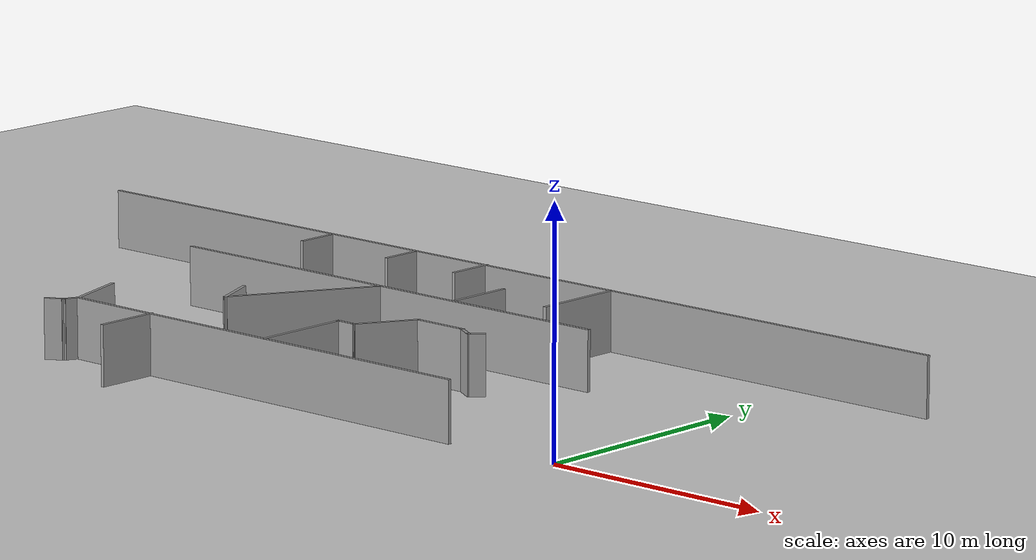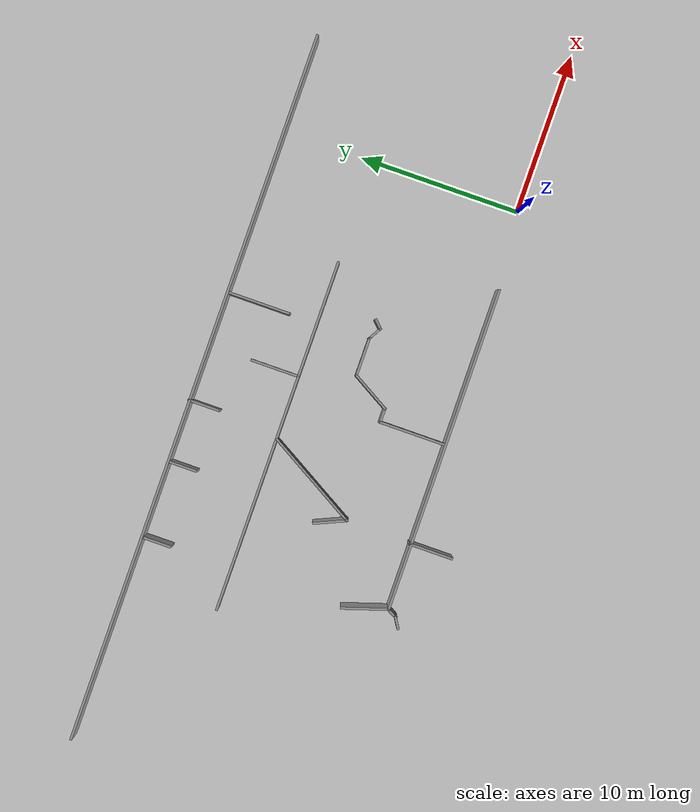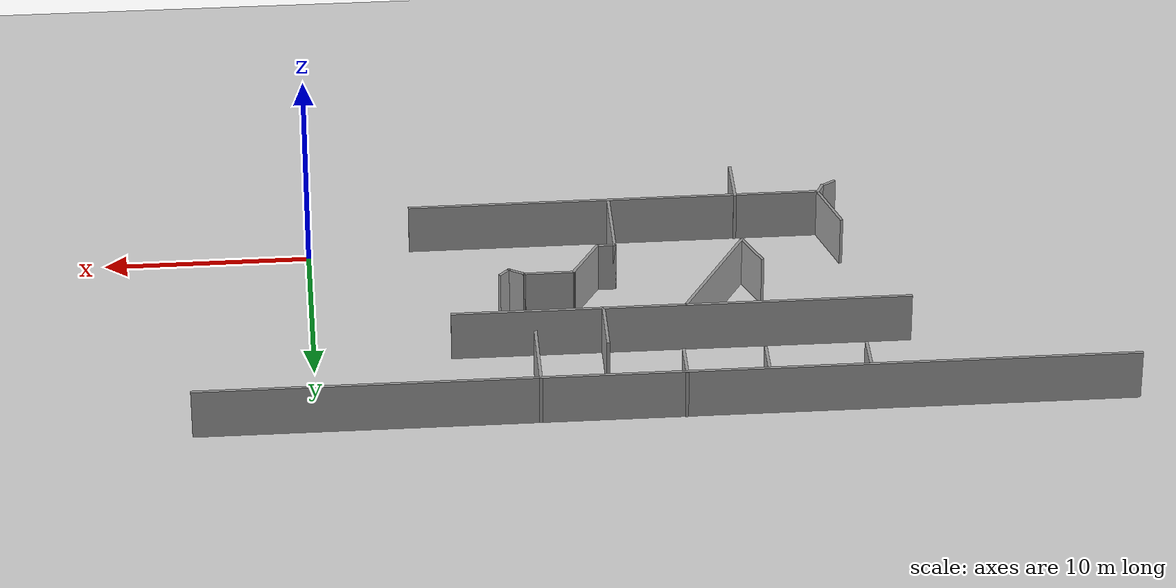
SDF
<sdf version="1.7">
 <world name="default">
  <model name="ground_plane">
   <static>1</static>
   <link name="link">
    <collision name="collision">
     <geometry><plane><normal>0 0 1</normal><size>100 100</size></plane></geometry>
     <surface>
      <contact><collide_bitmask>65535</collide_bitmask></contact>
      <friction><ode><mu>100</mu><mu2>50</mu2></ode></friction>
     </surface>
    </collision>
    <visual name="visual">
     <cast_shadows>0</cast_shadows>
     <geometry><plane><normal>0 0 1</normal><size>100 100</size></plane></geometry>
     <material>
      <script><uri>file://media/materials/scripts/gazebo.material</uri><name>Gazebo/Grey</name></script>
     </material>
    </visual>
   </link>
  </model>
  <model name="museum">
   <link name="Wall_0">
    <pose>1.36174 -6.35995 0 0 -0 0.00322</pose>
    <visual name="Wall_0_Visual">
     <pose>0 0 1.25 0 -0 0</pose>
     <geometry><box><size>20.2416 0.15 2.5</size></box></geometry>
     <material>
      <script><uri>file://media/materials/scripts/gazebo.material</uri><name>Gazebo/Grey</name></script>
      <ambient>1 1 1 1</ambient>
      <shader type="pixel"/>
     </material>
     <meta><layer>0</layer></meta>
    </visual>
    <collision name="Wall_0_Collision">
     <pose>0 0 1.25 0 -0 0</pose>
     <geometry><box><size>20.2416 0.15 2.5</size></box></geometry>
     <surface>
      <friction>
       <ode><mu>1</mu><mu2>1</mu2><fdir1>0 0 0</fdir1><slip1>0</slip1><slip2>0</slip2></ode>
       <torsional>
        <coefficient>1</coefficient>
        <patch_radius>0</patch_radius>
        <surface_radius>0</surface_radius>
        <use_patch_radius>1</use_patch_radius>
        <ode><slip>0</slip></ode>
       </torsional>
      </friction>
      <bounce><restitution_coefficient>0</restitution_coefficient><threshold>1e+06</threshold></bounce>
      <contact>
       <collide_without_contact>0</collide_without_contact>
       <collide_without_contact_bitmask>1</collide_without_contact_bitmask>
       <collide_bitmask>1</collide_bitmask>
       <ode>
        <soft_cfm>0</soft_cfm>
        <soft_erp>0.2</soft_erp>
        <kp>1e+13</kp>
        <kd>1</kd>
        <max_vel>0.01</max_vel>
        <min_depth>0</min_depth>
       </ode>
       <bullet>
        <split_impulse>1</split_impulse>
        <split_impulse_penetration_threshold>-0.01</split_impulse_penetration_threshold>
        <soft_cfm>0</soft_cfm>
        <soft_erp>0.2</soft_erp>
        <kp>1e+13</kp>
        <kd>1</kd>
       </bullet>
      </contact>
     </surface>
    </collision>
   </link>
   <link name="Wall_10">
    <pose>4.99403 0.023754 0 0 -0 0</pose>
    <visual name="Wall_10_Visual">
     <pose>0 0 1.25 0 -0 0</pose>
     <geometry><box><size>2.5 0.15 2.5</size></box></geometry>
     <material>
      <script><uri>file://media/materials/scripts/gazebo.material</uri><name>Gazebo/Grey</name></script>
      <ambient>1 1 1 1</ambient>
      <shader type="pixel"/>
     </material>
     <meta><layer>0</layer></meta>
    </visual>
    <collision name="Wall_10_Collision">
     <pose>0 0 1.25 0 -0 0</pose>
     <geometry><box><size>2.5 0.15 2.5</size></box></geometry>
     <surface>
      <friction>
       <ode><mu>1</mu><mu2>1</mu2><fdir1>0 0 0</fdir1><slip1>0</slip1><slip2>0</slip2></ode>
       <torsional>
        <coefficient>1</coefficient>
        <patch_radius>0</patch_radius>
        <surface_radius>0</surface_radius>
        <use_patch_radius>1</use_patch_radius>
        <ode><slip>0</slip></ode>
       </torsional>
      </friction>
      <bounce><restitution_coefficient>0</restitution_coefficient><threshold>1e+06</threshold></bounce>
      <contact>
       <collide_without_contact>0</collide_without_contact>
       <collide_without_contact_bitmask>1</collide_without_contact_bitmask>
       <collide_bitmask>1</collide_bitmask>
       <ode>
        <soft_cfm>0</soft_cfm>
        <soft_erp>0.2</soft_erp>
        <kp>1e+13</kp>
        <kd>1</kd>
        <max_vel>0.01</max_vel>
        <min_depth>0</min_depth>
       </ode>
       <bullet>
        <split_impulse>1</split_impulse>
        <split_impulse_penetration_threshold>-0.01</split_impulse_penetration_threshold>
        <soft_cfm>0</soft_cfm>
        <soft_erp>0.2</soft_erp>
        <kp>1e+13</kp>
        <kd>1</kd>
       </bullet>
      </contact>
     </surface>
    </collision>
   </link>
   <link name="Wall_11">
    <pose>6.53709 -0.188746 0 0 0 -0.523599</pose>
    <visual name="Wall_11_Visual">
     <pose>0 0 1.25 0 -0 0</pose>
     <geometry><box><size>1 0.15 2.5</size></box></geometry>
     <material>
      <script><uri>file://media/materials/scripts/gazebo.material</uri><name>Gazebo/Grey</name></script>
      <ambient>1 1 1 1</ambient>
      <shader type="pixel"/>
     </material>
     <meta><layer>0</layer></meta>
    </visual>
    <collision name="Wall_11_Collision">
     <pose>0 0 1.25 0 -0 0</pose>
     <geometry><box><size>1 0.15 2.5</size></box></geometry>
     <surface>
      <friction>
       <ode><mu>1</mu><mu2>1</mu2><fdir1>0 0 0</fdir1><slip1>0</slip1><slip2>0</slip2></ode>
       <torsional>
        <coefficient>1</coefficient>
        <patch_radius>0</patch_radius>
        <surface_radius>0</surface_radius>
        <use_patch_radius>1</use_patch_radius>
        <ode><slip>0</slip></ode>
       </torsional>
      </friction>
      <bounce><restitution_coefficient>0</restitution_coefficient><threshold>1e+06</threshold></bounce>
      <contact>
       <collide_without_contact>0</collide_without_contact>
       <collide_without_contact_bitmask>1</collide_without_contact_bitmask>
       <collide_bitmask>1</collide_bitmask>
       <ode>
        <soft_cfm>0</soft_cfm>
        <soft_erp>0.2</soft_erp>
        <kp>1e+13</kp>
        <kd>1</kd>
        <max_vel>0.01</max_vel>
        <min_depth>0</min_depth>
       </ode>
       <bullet>
        <split_impulse>1</split_impulse>
        <split_impulse_penetration_threshold>-0.01</split_impulse_penetration_threshold>
        <soft_cfm>0</soft_cfm>
        <soft_erp>0.2</soft_erp>
        <kp>1e+13</kp>
        <kd>1</kd>
       </bullet>
      </contact>
     </surface>
    </collision>
   </link>
   <link name="Wall_12">
    <pose>7.11728 -0.189114 0 0 -0 0.785398</pose>
    <visual name="Wall_12_Visual">
     <pose>0 0 1.25 0 -0 0</pose>
     <geometry><box><size>0.75 0.15 2.5</size></box></geometry>
     <material>
      <script><uri>file://media/materials/scripts/gazebo.material</uri><name>Gazebo/Grey</name></script>
      <ambient>1 1 1 1</ambient>
      <shader type="pixel"/>
     </material>
     <meta><layer>0</layer></meta>
    </visual>
    <collision name="Wall_12_Collision">
     <pose>0 0 1.25 0 -0 0</pose>
     <geometry><box><size>0.75 0.15 2.5</size></box></geometry>
     <surface>
      <friction>
       <ode><mu>1</mu><mu2>1</mu2><fdir1>0 0 0</fdir1><slip1>0</slip1><slip2>0</slip2></ode>
       <torsional>
        <coefficient>1</coefficient>
        <patch_radius>0</patch_radius>
        <surface_radius>0</surface_radius>
        <use_patch_radius>1</use_patch_radius>
        <ode><slip>0</slip></ode>
       </torsional>
      </friction>
      <bounce><restitution_coefficient>0</restitution_coefficient><threshold>1e+06</threshold></bounce>
      <contact>
       <collide_without_contact>0</collide_without_contact>
       <collide_without_contact_bitmask>1</collide_without_contact_bitmask>
       <collide_bitmask>1</collide_bitmask>
       <ode>
        <soft_cfm>0</soft_cfm>
        <soft_erp>0.2</soft_erp>
        <kp>1e+13</kp>
        <kd>1</kd>
        <max_vel>0.01</max_vel>
        <min_depth>0</min_depth>
       </ode>
       <bullet>
        <split_impulse>1</split_impulse>
        <split_impulse_penetration_threshold>-0.01</split_impulse_penetration_threshold>
        <soft_cfm>0</soft_cfm>
        <soft_erp>0.2</soft_erp>
        <kp>1e+13</kp>
        <kd>1</kd>
       </bullet>
      </contact>
     </surface>
    </collision>
   </link>
   <link name="Wall_30">
    <pose>-0.035673 8.91342 0 0 -0 0.000389</pose>
    <visual name="Wall_30_Visual">
     <pose>0 0 1.25 0 -0 0</pose>
     <geometry><box><size>44.4628 0.15 2.5</size></box></geometry>
     <material>
      <script><uri>file://media/materials/scripts/gazebo.material</uri><name>Gazebo/Grey</name></script>
      <ambient>1 1 1 1</ambient>
      <shader type="pixel"/>
     </material>
     <meta><layer>0</layer></meta>
    </visual>
    <collision name="Wall_30_Collision">
     <pose>0 0 1.25 0 -0 0</pose>
     <geometry><box><size>44.4628 0.15 2.5</size></box></geometry>
     <surface>
      <friction>
       <ode><mu>1</mu><mu2>1</mu2><fdir1>0 0 0</fdir1><slip1>0</slip1><slip2>0</slip2></ode>
       <torsional>
        <coefficient>1</coefficient>
        <patch_radius>0</patch_radius>
        <surface_radius>0</surface_radius>
        <use_patch_radius>1</use_patch_radius>
        <ode><slip>0</slip></ode>
       </torsional>
      </friction>
      <bounce><restitution_coefficient>0</restitution_coefficient><threshold>1e+06</threshold></bounce>
      <contact>
       <collide_without_contact>0</collide_without_contact>
       <collide_without_contact_bitmask>1</collide_without_contact_bitmask>
       <collide_bitmask>1</collide_bitmask>
       <ode>
        <soft_cfm>0</soft_cfm>
        <soft_erp>0.2</soft_erp>
        <kp>1e+13</kp>
        <kd>1</kd>
        <max_vel>0.01</max_vel>
        <min_depth>0</min_depth>
       </ode>
       <bullet>
        <split_impulse>1</split_impulse>
        <split_impulse_penetration_threshold>-0.01</split_impulse_penetration_threshold>
        <soft_cfm>0</soft_cfm>
        <soft_erp>0.2</soft_erp>
        <kp>1e+13</kp>
        <kd>1</kd>
       </bullet>
      </contact>
     </surface>
    </collision>
   </link>
   <link name="Wall_33">
    <pose>-4.58629 -7.629 0 0 0 -1.5708</pose>
    <visual name="Wall_33_Visual">
     <pose>0 0 1.25 0 -0 0</pose>
     <geometry><box><size>2.75 0.15 2.5</size></box></geometry>
     <material>
      <script><uri>file://media/materials/scripts/gazebo.material</uri><name>Gazebo/Grey</name></script>
      <ambient>1 1 1 1</ambient>
      <shader type="pixel"/>
     </material>
     <meta><layer>0</layer></meta>
    </visual>
    <collision name="Wall_33_Collision">
     <pose>0 0 1.25 0 -0 0</pose>
     <geometry><box><size>2.75 0.15 2.5</size></box></geometry>
     <surface>
      <friction>
       <ode><mu>1</mu><mu2>1</mu2><fdir1>0 0 0</fdir1><slip1>0</slip1><slip2>0</slip2></ode>
       <torsional>
        <coefficient>1</coefficient>
        <patch_radius>0</patch_radius>
        <surface_radius>0</surface_radius>
        <use_patch_radius>1</use_patch_radius>
        <ode><slip>0</slip></ode>
       </torsional>
      </friction>
      <bounce><restitution_coefficient>0</restitution_coefficient><threshold>1e+06</threshold></bounce>
      <contact>
       <collide_without_contact>0</collide_without_contact>
       <collide_without_contact_bitmask>1</collide_without_contact_bitmask>
       <collide_bitmask>1</collide_bitmask>
       <ode>
        <soft_cfm>0</soft_cfm>
        <soft_erp>0.2</soft_erp>
        <kp>1e+13</kp>
        <kd>1</kd>
        <max_vel>0.01</max_vel>
        <min_depth>0</min_depth>
       </ode>
       <bullet>
        <split_impulse>1</split_impulse>
        <split_impulse_penetration_threshold>-0.01</split_impulse_penetration_threshold>
        <soft_cfm>0</soft_cfm>
        <soft_erp>0.2</soft_erp>
        <kp>1e+13</kp>
        <kd>1</kd>
       </bullet>
      </contact>
     </surface>
    </collision>
   </link>
   <link name="Wall_45">
    <pose>-4.9172 -1.38036 0 0 0 -1.15545</pose>
    <visual name="Wall_45_Visual">
     <pose>0 0 1.25 0 -0 0</pose>
     <geometry><box><size>2.13807 0.15 2.5</size></box></geometry>
     <material>
      <script><uri>file://media/materials/scripts/gazebo.material</uri><name>Gazebo/Grey</name></script>
      <ambient>1 1 1 1</ambient>
      <shader type="pixel"/>
     </material>
     <meta><layer>0</layer></meta>
    </visual>
    <collision name="Wall_45_Collision">
     <pose>0 0 1.25 0 -0 0</pose>
     <geometry><box><size>2.13807 0.15 2.5</size></box></geometry>
     <surface>
      <friction>
       <ode><mu>1</mu><mu2>1</mu2><fdir1>0 0 0</fdir1><slip1>0</slip1><slip2>0</slip2></ode>
       <torsional>
        <coefficient>1</coefficient>
        <patch_radius>0</patch_radius>
        <surface_radius>0</surface_radius>
        <use_patch_radius>1</use_patch_radius>
        <ode><slip>0</slip></ode>
       </torsional>
      </friction>
      <bounce><restitution_coefficient>0</restitution_coefficient><threshold>1e+06</threshold></bounce>
      <contact>
       <collide_without_contact>0</collide_without_contact>
       <collide_without_contact_bitmask>1</collide_without_contact_bitmask>
       <collide_bitmask>1</collide_bitmask>
       <ode>
        <soft_cfm>0</soft_cfm>
        <soft_erp>0.2</soft_erp>
        <kp>1e+13</kp>
        <kd>1</kd>
        <max_vel>0.01</max_vel>
        <min_depth>0</min_depth>
       </ode>
       <bullet>
        <split_impulse>1</split_impulse>
        <split_impulse_penetration_threshold>-0.01</split_impulse_penetration_threshold>
        <soft_cfm>0</soft_cfm>
        <soft_erp>0.2</soft_erp>
        <kp>1e+13</kp>
        <kd>1</kd>
       </bullet>
      </contact>
     </surface>
    </collision>
   </link>
   <link name="Wall_46">
    <pose>-2.9286 0.459745 0 0 -0 1.0472</pose>
    <visual name="Wall_46_Visual">
     <pose>0 0 1.25 0 -0 0</pose>
     <geometry><box><size>6.5 0.15 2.5</size></box></geometry>
     <material>
      <script><uri>file://media/materials/scripts/gazebo.material</uri><name>Gazebo/Grey</name></script>
      <ambient>1 1 1 1</ambient>
      <shader type="pixel"/>
     </material>
     <meta><layer>0</layer></meta>
    </visual>
    <collision name="Wall_46_Collision">
     <pose>0 0 1.25 0 -0 0</pose>
     <geometry><box><size>6.5 0.15 2.5</size></box></geometry>
     <surface>
      <friction>
       <ode><mu>1</mu><mu2>1</mu2><fdir1>0 0 0</fdir1><slip1>0</slip1><slip2>0</slip2></ode>
       <torsional>
        <coefficient>1</coefficient>
        <patch_radius>0</patch_radius>
        <surface_radius>0</surface_radius>
        <use_patch_radius>1</use_patch_radius>
        <ode><slip>0</slip></ode>
       </torsional>
      </friction>
      <bounce><restitution_coefficient>0</restitution_coefficient><threshold>1e+06</threshold></bounce>
      <contact>
       <collide_without_contact>0</collide_without_contact>
       <collide_without_contact_bitmask>1</collide_without_contact_bitmask>
       <collide_bitmask>1</collide_bitmask>
       <ode>
        <soft_cfm>0</soft_cfm>
        <soft_erp>0.2</soft_erp>
        <kp>1e+13</kp>
        <kd>1</kd>
        <max_vel>0.01</max_vel>
        <min_depth>0</min_depth>
       </ode>
       <bullet>
        <split_impulse>1</split_impulse>
        <split_impulse_penetration_threshold>-0.01</split_impulse_penetration_threshold>
        <soft_cfm>0</soft_cfm>
        <soft_erp>0.2</soft_erp>
        <kp>1e+13</kp>
        <kd>1</kd>
       </bullet>
      </contact>
     </surface>
    </collision>
   </link>
   <link name="Wall_48">
    <pose>-1.12537 3.27433 0 0 -0 0</pose>
    <visual name="Wall_48_Visual">
     <pose>0 0 1.25 0 -0 0</pose>
     <geometry><box><size>22 0.15 2.5</size></box></geometry>
     <material>
      <script><uri>file://media/materials/scripts/gazebo.material</uri><name>Gazebo/Grey</name></script>
      <ambient>1 1 1 1</ambient>
      <shader type="pixel"/>
     </material>
     <meta><layer>0</layer></meta>
    </visual>
    <collision name="Wall_48_Collision">
     <pose>0 0 1.25 0 -0 0</pose>
     <geometry><box><size>22 0.15 2.5</size></box></geometry>
     <surface>
      <friction>
       <ode><mu>1</mu><mu2>1</mu2><fdir1>0 0 0</fdir1><slip1>0</slip1><slip2>0</slip2></ode>
       <torsional>
        <coefficient>1</coefficient>
        <patch_radius>0</patch_radius>
        <surface_radius>0</surface_radius>
        <use_patch_radius>1</use_patch_radius>
        <ode><slip>0</slip></ode>
       </torsional>
      </friction>
      <bounce><restitution_coefficient>0</restitution_coefficient><threshold>1e+06</threshold></bounce>
      <contact>
       <collide_without_contact>0</collide_without_contact>
       <collide_without_contact_bitmask>1</collide_without_contact_bitmask>
       <collide_bitmask>1</collide_bitmask>
       <ode>
        <soft_cfm>0</soft_cfm>
        <soft_erp>0.2</soft_erp>
        <kp>1e+13</kp>
        <kd>1</kd>
        <max_vel>0.01</max_vel>
        <min_depth>0</min_depth>
       </ode>
       <bullet>
        <split_impulse>1</split_impulse>
        <split_impulse_penetration_threshold>-0.01</split_impulse_penetration_threshold>
        <soft_cfm>0</soft_cfm>
        <soft_erp>0.2</soft_erp>
        <kp>1e+13</kp>
        <kd>1</kd>
       </bullet>
      </contact>
     </surface>
    </collision>
   </link>
   <link name="Wall_52">
    <pose>-9.46474 7.92651 0 0 -0 1.5708</pose>
    <visual name="Wall_52_Visual">
     <pose>0 0 1.25 0 -0 0</pose>
     <geometry><box><size>1.75 0.15 2.5</size></box></geometry>
     <material>
      <script><uri>file://media/materials/scripts/gazebo.material</uri><name>Gazebo/Grey</name></script>
      <ambient>1 1 1 1</ambient>
      <shader type="pixel"/>
     </material>
     <meta><layer>0</layer></meta>
    </visual>
    <collision name="Wall_52_Collision">
     <pose>0 0 1.25 0 -0 0</pose>
     <geometry><box><size>1.75 0.15 2.5</size></box></geometry>
     <surface>
      <friction>
       <ode><mu>1</mu><mu2>1</mu2><fdir1>0 0 0</fdir1><slip1>0</slip1><slip2>0</slip2></ode>
       <torsional>
        <coefficient>1</coefficient>
        <patch_radius>0</patch_radius>
        <surface_radius>0</surface_radius>
        <use_patch_radius>1</use_patch_radius>
        <ode><slip>0</slip></ode>
       </torsional>
      </friction>
      <bounce><restitution_coefficient>0</restitution_coefficient><threshold>1e+06</threshold></bounce>
      <contact>
       <collide_without_contact>0</collide_without_contact>
       <collide_without_contact_bitmask>1</collide_without_contact_bitmask>
       <collide_bitmask>1</collide_bitmask>
       <ode>
        <soft_cfm>0</soft_cfm>
        <soft_erp>0.2</soft_erp>
        <kp>1e+13</kp>
        <kd>1</kd>
        <max_vel>0.01</max_vel>
        <min_depth>0</min_depth>
       </ode>
       <bullet>
        <split_impulse>1</split_impulse>
        <split_impulse_penetration_threshold>-0.01</split_impulse_penetration_threshold>
        <soft_cfm>0</soft_cfm>
        <soft_erp>0.2</soft_erp>
        <kp>1e+13</kp>
        <kd>1</kd>
       </bullet>
      </contact>
     </surface>
    </collision>
   </link>
   <link name="Wall_54">
    <pose>-4.70302 7.98002 0 0 -0 1.5708</pose>
    <visual name="Wall_54_Visual">
     <pose>0 0 1.25 0 -0 0</pose>
     <geometry><box><size>1.75 0.15 2.5</size></box></geometry>
     <material>
      <script><uri>file://media/materials/scripts/gazebo.material</uri><name>Gazebo/Grey</name></script>
      <ambient>1 1 1 1</ambient>
      <shader type="pixel"/>
     </material>
     <meta><layer>0</layer></meta>
    </visual>
    <collision name="Wall_54_Collision">
     <pose>0 0 1.25 0 -0 0</pose>
     <geometry><box><size>1.75 0.15 2.5</size></box></geometry>
     <surface>
      <friction>
       <ode><mu>1</mu><mu2>1</mu2><fdir1>0 0 0</fdir1><slip1>0</slip1><slip2>0</slip2></ode>
       <torsional>
        <coefficient>1</coefficient>
        <patch_radius>0</patch_radius>
        <surface_radius>0</surface_radius>
        <use_patch_radius>1</use_patch_radius>
        <ode><slip>0</slip></ode>
       </torsional>
      </friction>
      <bounce><restitution_coefficient>0</restitution_coefficient><threshold>1e+06</threshold></bounce>
      <contact>
       <collide_without_contact>0</collide_without_contact>
       <collide_without_contact_bitmask>1</collide_without_contact_bitmask>
       <collide_bitmask>1</collide_bitmask>
       <ode>
        <soft_cfm>0</soft_cfm>
        <soft_erp>0.2</soft_erp>
        <kp>1e+13</kp>
        <kd>1</kd>
        <max_vel>0.01</max_vel>
        <min_depth>0</min_depth>
       </ode>
       <bullet>
        <split_impulse>1</split_impulse>
        <split_impulse_penetration_threshold>-0.01</split_impulse_penetration_threshold>
        <soft_cfm>0</soft_cfm>
        <soft_erp>0.2</soft_erp>
        <kp>1e+13</kp>
        <kd>1</kd>
       </bullet>
      </contact>
     </surface>
    </collision>
   </link>
   <link name="Wall_56">
    <pose>-0.850838 8.02476 0 0 -0 1.5708</pose>
    <visual name="Wall_56_Visual">
     <pose>0 0 1.25 0 -0 0</pose>
     <geometry><box><size>2 0.15 2.5</size></box></geometry>
     <material>
      <script><uri>file://media/materials/scripts/gazebo.material</uri><name>Gazebo/Grey</name></script>
      <ambient>1 1 1 1</ambient>
      <shader type="pixel"/>
     </material>
     <meta><layer>0</layer></meta>
    </visual>
    <collision name="Wall_56_Collision">
     <pose>0 0 1.25 0 -0 0</pose>
     <geometry><box><size>2 0.15 2.5</size></box></geometry>
     <surface>
      <friction>
       <ode><mu>1</mu><mu2>1</mu2><fdir1>0 0 0</fdir1><slip1>0</slip1><slip2>0</slip2></ode>
       <torsional>
        <coefficient>1</coefficient>
        <patch_radius>0</patch_radius>
        <surface_radius>0</surface_radius>
        <use_patch_radius>1</use_patch_radius>
        <ode><slip>0</slip></ode>
       </torsional>
      </friction>
      <bounce><restitution_coefficient>0</restitution_coefficient><threshold>1e+06</threshold></bounce>
      <contact>
       <collide_without_contact>0</collide_without_contact>
       <collide_without_contact_bitmask>1</collide_without_contact_bitmask>
       <collide_bitmask>1</collide_bitmask>
       <ode>
        <soft_cfm>0</soft_cfm>
        <soft_erp>0.2</soft_erp>
        <kp>1e+13</kp>
        <kd>1</kd>
        <max_vel>0.01</max_vel>
        <min_depth>0</min_depth>
       </ode>
       <bullet>
        <split_impulse>1</split_impulse>
        <split_impulse_penetration_threshold>-0.01</split_impulse_penetration_threshold>
        <soft_cfm>0</soft_cfm>
        <soft_erp>0.2</soft_erp>
        <kp>1e+13</kp>
        <kd>1</kd>
       </bullet>
      </contact>
     </surface>
    </collision>
   </link>
   <link name="Wall_58">
    <pose>2.62683 4.76522 0 0 0 -1.5708</pose>
    <visual name="Wall_58_Visual">
     <pose>0 0 1.25 0 -0 0</pose>
     <geometry><box><size>3 0.15 2.5</size></box></geometry>
     <material>
      <script><uri>file://media/materials/scripts/gazebo.material</uri><name>Gazebo/Grey</name></script>
      <ambient>1 1 1 1</ambient>
      <shader type="pixel"/>
     </material>
     <meta><layer>0</layer></meta>
    </visual>
    <collision name="Wall_58_Collision">
     <pose>0 0 1.25 0 -0 0</pose>
     <geometry><box><size>3 0.15 2.5</size></box></geometry>
     <surface>
      <friction>
       <ode><mu>1</mu><mu2>1</mu2><fdir1>0 0 0</fdir1><slip1>0</slip1><slip2>0</slip2></ode>
       <torsional>
        <coefficient>1</coefficient>
        <patch_radius>0</patch_radius>
        <surface_radius>0</surface_radius>
        <use_patch_radius>1</use_patch_radius>
        <ode><slip>0</slip></ode>
       </torsional>
      </friction>
      <bounce><restitution_coefficient>0</restitution_coefficient><threshold>1e+06</threshold></bounce>
      <contact>
       <collide_without_contact>0</collide_without_contact>
       <collide_without_contact_bitmask>1</collide_without_contact_bitmask>
       <collide_bitmask>1</collide_bitmask>
       <ode>
        <soft_cfm>0</soft_cfm>
        <soft_erp>0.2</soft_erp>
        <kp>1e+13</kp>
        <kd>1</kd>
        <max_vel>0.01</max_vel>
        <min_depth>0</min_depth>
       </ode>
       <bullet>
        <split_impulse>1</split_impulse>
        <split_impulse_penetration_threshold>-0.01</split_impulse_penetration_threshold>
        <soft_cfm>0</soft_cfm>
        <soft_erp>0.2</soft_erp>
        <kp>1e+13</kp>
        <kd>1</kd>
       </bullet>
      </contact>
     </surface>
    </collision>
   </link>
   <link name="Wall_60">
    <pose>5.97073 6.99167 0 0 -0 1.5708</pose>
    <visual name="Wall_60_Visual">
     <pose>0 0 1.25 0 -0 0</pose>
     <geometry><box><size>4 0.15 2.5</size></box></geometry>
     <material>
      <script><uri>file://media/materials/scripts/gazebo.material</uri><name>Gazebo/Grey</name></script>
      <ambient>1 1 1 1</ambient>
      <shader type="pixel"/>
     </material>
     <meta><layer>0</layer></meta>
    </visual>
    <collision name="Wall_60_Collision">
     <pose>0 0 1.25 0 -0 0</pose>
     <geometry><box><size>4 0.15 2.5</size></box></geometry>
     <surface>
      <friction>
       <ode><mu>1</mu><mu2>1</mu2><fdir1>0 0 0</fdir1><slip1>0</slip1><slip2>0</slip2></ode>
       <torsional>
        <coefficient>1</coefficient>
        <patch_radius>0</patch_radius>
        <surface_radius>0</surface_radius>
        <use_patch_radius>1</use_patch_radius>
        <ode><slip>0</slip></ode>
       </torsional>
      </friction>
      <bounce><restitution_coefficient>0</restitution_coefficient><threshold>1e+06</threshold></bounce>
      <contact>
       <collide_without_contact>0</collide_without_contact>
       <collide_without_contact_bitmask>1</collide_without_contact_bitmask>
       <collide_bitmask>1</collide_bitmask>
       <ode>
        <soft_cfm>0</soft_cfm>
        <soft_erp>0.2</soft_erp>
        <kp>1e+13</kp>
        <kd>1</kd>
        <max_vel>0.01</max_vel>
        <min_depth>0</min_depth>
       </ode>
       <bullet>
        <split_impulse>1</split_impulse>
        <split_impulse_penetration_threshold>-0.01</split_impulse_penetration_threshold>
        <soft_cfm>0</soft_cfm>
        <soft_erp>0.2</soft_erp>
        <kp>1e+13</kp>
        <kd>1</kd>
       </bullet>
      </contact>
     </surface>
    </collision>
   </link>
   <link name="Wall_7">
    <pose>1.66903 -4.27791 0 0 -0 1.5708</pose>
    <visual name="Wall_7_Visual">
     <pose>0 0 1.25 0 -0 0</pose>
     <geometry><box><size>4.25 0.15 2.5</size></box></geometry>
     <material>
      <script><uri>file://media/materials/scripts/gazebo.material</uri><name>Gazebo/Grey</name></script>
      <ambient>1 1 1 1</ambient>
      <shader type="pixel"/>
     </material>
     <meta><layer>0</layer></meta>
    </visual>
    <collision name="Wall_7_Collision">
     <pose>0 0 1.25 0 -0 0</pose>
     <geometry><box><size>4.25 0.15 2.5</size></box></geometry>
     <surface>
      <friction>
       <ode><mu>1</mu><mu2>1</mu2><fdir1>0 0 0</fdir1><slip1>0</slip1><slip2>0</slip2></ode>
       <torsional>
        <coefficient>1</coefficient>
        <patch_radius>0</patch_radius>
        <surface_radius>0</surface_radius>
        <use_patch_radius>1</use_patch_radius>
        <ode><slip>0</slip></ode>
       </torsional>
      </friction>
      <bounce><restitution_coefficient>0</restitution_coefficient><threshold>1e+06</threshold></bounce>
      <contact>
       <collide_without_contact>0</collide_without_contact>
       <collide_without_contact_bitmask>1</collide_without_contact_bitmask>
       <collide_bitmask>1</collide_bitmask>
       <ode>
        <soft_cfm>0</soft_cfm>
        <soft_erp>0.2</soft_erp>
        <kp>1e+13</kp>
        <kd>1</kd>
        <max_vel>0.01</max_vel>
        <min_depth>0</min_depth>
       </ode>
       <bullet>
        <split_impulse>1</split_impulse>
        <split_impulse_penetration_threshold>-0.01</split_impulse_penetration_threshold>
        <soft_cfm>0</soft_cfm>
        <soft_erp>0.2</soft_erp>
        <kp>1e+13</kp>
        <kd>1</kd>
       </bullet>
      </contact>
     </surface>
    </collision>
   </link>
   <link name="Wall_74">
    <pose>-9.263 -7.09783 0 0 -0 0.557557</pose>
    <visual name="Wall_74_Visual">
     <pose>0 0 1.25 0 -0 0</pose>
     <geometry><box><size>0.878533 0.15 2.5</size></box></geometry>
     <material>
      <script><uri>file://media/materials/scripts/gazebo.material</uri><name>Gazebo/Grey</name></script>
      <ambient>1 1 1 1</ambient>
      <shader type="pixel"/>
     </material>
     <meta><layer>0</layer></meta>
    </visual>
    <collision name="Wall_74_Collision">
     <pose>0 0 1.25 0 -0 0</pose>
     <geometry><box><size>0.878533 0.15 2.5</size></box></geometry>
     <surface>
      <friction>
       <ode><mu>1</mu><mu2>1</mu2><fdir1>0 0 0</fdir1><slip1>0</slip1><slip2>0</slip2></ode>
       <torsional>
        <coefficient>1</coefficient>
        <patch_radius>0</patch_radius>
        <surface_radius>0</surface_radius>
        <use_patch_radius>1</use_patch_radius>
        <ode><slip>0</slip></ode>
       </torsional>
      </friction>
      <bounce><restitution_coefficient>0</restitution_coefficient><threshold>1e+06</threshold></bounce>
      <contact>
       <collide_without_contact>0</collide_without_contact>
       <collide_without_contact_bitmask>1</collide_without_contact_bitmask>
       <collide_bitmask>1</collide_bitmask>
       <ode>
        <soft_cfm>0</soft_cfm>
        <soft_erp>0.2</soft_erp>
        <kp>1e+13</kp>
        <kd>1</kd>
        <max_vel>0.01</max_vel>
        <min_depth>0</min_depth>
       </ode>
       <bullet>
        <split_impulse>1</split_impulse>
        <split_impulse_penetration_threshold>-0.01</split_impulse_penetration_threshold>
        <soft_cfm>0</soft_cfm>
        <soft_erp>0.2</soft_erp>
        <kp>1e+13</kp>
        <kd>1</kd>
       </bullet>
      </contact>
     </surface>
    </collision>
   </link>
   <link name="Wall_75">
    <pose>-8.83299 -6.65175 0 0 -0 1.10514</pose>
    <visual name="Wall_75_Visual">
     <pose>0 0 1.25 0 -0 0</pose>
     <geometry><box><size>0.774942 0.15 2.5</size></box></geometry>
     <material>
      <script><uri>file://media/materials/scripts/gazebo.material</uri><name>Gazebo/Grey</name></script>
      <ambient>1 1 1 1</ambient>
      <shader type="pixel"/>
     </material>
     <meta><layer>0</layer></meta>
    </visual>
    <collision name="Wall_75_Collision">
     <pose>0 0 1.25 0 -0 0</pose>
     <geometry><box><size>0.774942 0.15 2.5</size></box></geometry>
     <surface>
      <friction>
       <ode><mu>1</mu><mu2>1</mu2><fdir1>0 0 0</fdir1><slip1>0</slip1><slip2>0</slip2></ode>
       <torsional>
        <coefficient>1</coefficient>
        <patch_radius>0</patch_radius>
        <surface_radius>0</surface_radius>
        <use_patch_radius>1</use_patch_radius>
        <ode><slip>0</slip></ode>
       </torsional>
      </friction>
      <bounce><restitution_coefficient>0</restitution_coefficient><threshold>1e+06</threshold></bounce>
      <contact>
       <collide_without_contact>0</collide_without_contact>
       <collide_without_contact_bitmask>1</collide_without_contact_bitmask>
       <collide_bitmask>1</collide_bitmask>
       <ode>
        <soft_cfm>0</soft_cfm>
        <soft_erp>0.2</soft_erp>
        <kp>1e+13</kp>
        <kd>1</kd>
        <max_vel>0.01</max_vel>
        <min_depth>0</min_depth>
       </ode>
       <bullet>
        <split_impulse>1</split_impulse>
        <split_impulse_penetration_threshold>-0.01</split_impulse_penetration_threshold>
        <soft_cfm>0</soft_cfm>
        <soft_erp>0.2</soft_erp>
        <kp>1e+13</kp>
        <kd>1</kd>
       </bullet>
      </contact>
     </surface>
    </collision>
   </link>
   <link name="Wall_76">
    <pose>-9.10023 -5.04365 0 0 -0 1.88165</pose>
    <visual name="Wall_76_Visual">
     <pose>0 0 1.25 0 -0 0</pose>
     <geometry><box><size>2.94158 0.15 2.5</size></box></geometry>
     <material>
      <script><uri>file://media/materials/scripts/gazebo.material</uri><name>Gazebo/Grey</name></script>
      <ambient>1 1 1 1</ambient>
      <shader type="pixel"/>
     </material>
     <meta><layer>0</layer></meta>
    </visual>
    <collision name="Wall_76_Collision">
     <pose>0 0 1.25 0 -0 0</pose>
     <geometry><box><size>2.94158 0.15 2.5</size></box></geometry>
     <surface>
      <friction>
       <ode><mu>1</mu><mu2>1</mu2><fdir1>0 0 0</fdir1><slip1>0</slip1><slip2>0</slip2></ode>
       <torsional>
        <coefficient>1</coefficient>
        <patch_radius>0</patch_radius>
        <surface_radius>0</surface_radius>
        <use_patch_radius>1</use_patch_radius>
        <ode><slip>0</slip></ode>
       </torsional>
      </friction>
      <bounce><restitution_coefficient>0</restitution_coefficient><threshold>1e+06</threshold></bounce>
      <contact>
       <collide_without_contact>0</collide_without_contact>
       <collide_without_contact_bitmask>1</collide_without_contact_bitmask>
       <collide_bitmask>1</collide_bitmask>
       <ode>
        <soft_cfm>0</soft_cfm>
        <soft_erp>0.2</soft_erp>
        <kp>1e+13</kp>
        <kd>1</kd>
        <max_vel>0.01</max_vel>
        <min_depth>0</min_depth>
       </ode>
       <bullet>
        <split_impulse>1</split_impulse>
        <split_impulse_penetration_threshold>-0.01</split_impulse_penetration_threshold>
        <soft_cfm>0</soft_cfm>
        <soft_erp>0.2</soft_erp>
        <kp>1e+13</kp>
        <kd>1</kd>
       </bullet>
      </contact>
     </surface>
    </collision>
   </link>
   <link name="Wall_8">
    <pose>2.09403 -2.22791 0 0 -0 0</pose>
    <visual name="Wall_8_Visual">
     <pose>0 0 1.25 0 -0 0</pose>
     <geometry><box><size>1 0.15 2.5</size></box></geometry>
     <material>
      <script><uri>file://media/materials/scripts/gazebo.material</uri><name>Gazebo/Grey</name></script>
      <ambient>1 1 1 1</ambient>
      <shader type="pixel"/>
     </material>
     <meta><layer>0</layer></meta>
    </visual>
    <collision name="Wall_8_Collision">
     <pose>0 0 1.25 0 -0 0</pose>
     <geometry><box><size>1 0.15 2.5</size></box></geometry>
     <surface>
      <friction>
       <ode><mu>1</mu><mu2>1</mu2><fdir1>0 0 0</fdir1><slip1>0</slip1><slip2>0</slip2></ode>
       <torsional>
        <coefficient>1</coefficient>
        <patch_radius>0</patch_radius>
        <surface_radius>0</surface_radius>
        <use_patch_radius>1</use_patch_radius>
        <ode><slip>0</slip></ode>
       </torsional>
      </friction>
      <bounce><restitution_coefficient>0</restitution_coefficient><threshold>1e+06</threshold></bounce>
      <contact>
       <collide_without_contact>0</collide_without_contact>
       <collide_without_contact_bitmask>1</collide_without_contact_bitmask>
       <collide_bitmask>1</collide_bitmask>
       <ode>
        <soft_cfm>0</soft_cfm>
        <soft_erp>0.2</soft_erp>
        <kp>1e+13</kp>
        <kd>1</kd>
        <max_vel>0.01</max_vel>
        <min_depth>0</min_depth>
       </ode>
       <bullet>
        <split_impulse>1</split_impulse>
        <split_impulse_penetration_threshold>-0.01</split_impulse_penetration_threshold>
        <soft_cfm>0</soft_cfm>
        <soft_erp>0.2</soft_erp>
        <kp>1e+13</kp>
        <kd>1</kd>
       </bullet>
      </contact>
     </surface>
    </collision>
   </link>
   <link name="Wall_9">
    <pose>3.16903 -1.10208 0 0 -0 1.0472</pose>
    <visual name="Wall_9_Visual">
     <pose>0 0 1.25 0 -0 0</pose>
     <geometry><box><size>2.75 0.15 2.5</size></box></geometry>
     <material>
      <script><uri>file://media/materials/scripts/gazebo.material</uri><name>Gazebo/Grey</name></script>
      <ambient>1 1 1 1</ambient>
      <shader type="pixel"/>
     </material>
     <meta><layer>0</layer></meta>
    </visual>
    <collision name="Wall_9_Collision">
     <pose>0 0 1.25 0 -0 0</pose>
     <geometry><box><size>2.75 0.15 2.5</size></box></geometry>
     <surface>
      <friction>
       <ode><mu>1</mu><mu2>1</mu2><fdir1>0 0 0</fdir1><slip1>0</slip1><slip2>0</slip2></ode>
       <torsional>
        <coefficient>1</coefficient>
        <patch_radius>0</patch_radius>
        <surface_radius>0</surface_radius>
        <use_patch_radius>1</use_patch_radius>
        <ode><slip>0</slip></ode>
       </torsional>
      </friction>
      <bounce><restitution_coefficient>0</restitution_coefficient><threshold>1e+06</threshold></bounce>
      <contact>
       <collide_without_contact>0</collide_without_contact>
       <collide_without_contact_bitmask>1</collide_without_contact_bitmask>
       <collide_bitmask>1</collide_bitmask>
       <ode>
        <soft_cfm>0</soft_cfm>
        <soft_erp>0.2</soft_erp>
        <kp>1e+13</kp>
        <kd>1</kd>
        <max_vel>0.01</max_vel>
        <min_depth>0</min_depth>
       </ode>
       <bullet>
        <split_impulse>1</split_impulse>
        <split_impulse_penetration_threshold>-0.01</split_impulse_penetration_threshold>
        <soft_cfm>0</soft_cfm>
        <soft_erp>0.2</soft_erp>
        <kp>1e+13</kp>
        <kd>1</kd>
       </bullet>
      </contact>
     </surface>
    </collision>
   </link>
   <static>1</static>
   <pose>-16.4037 5.92571 0 0 -0 0</pose>
  </model>
 </world>
</sdf>
